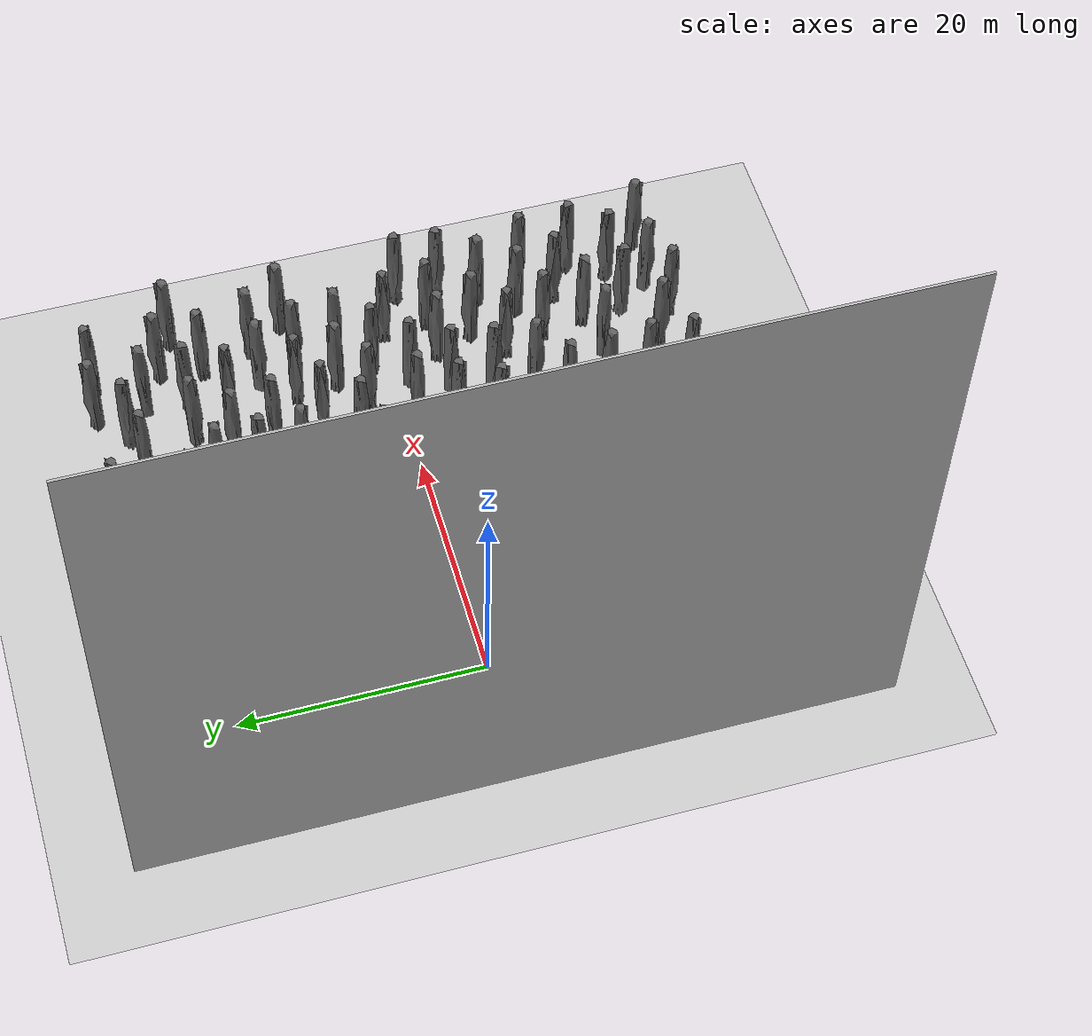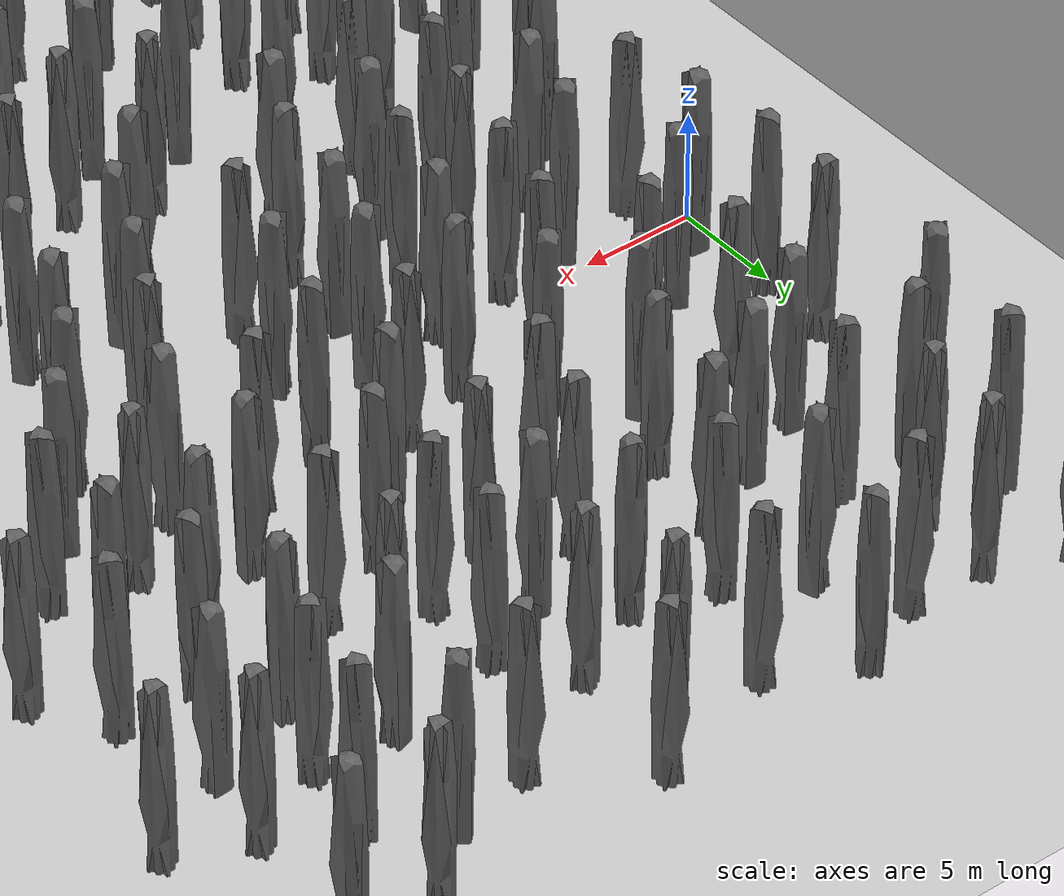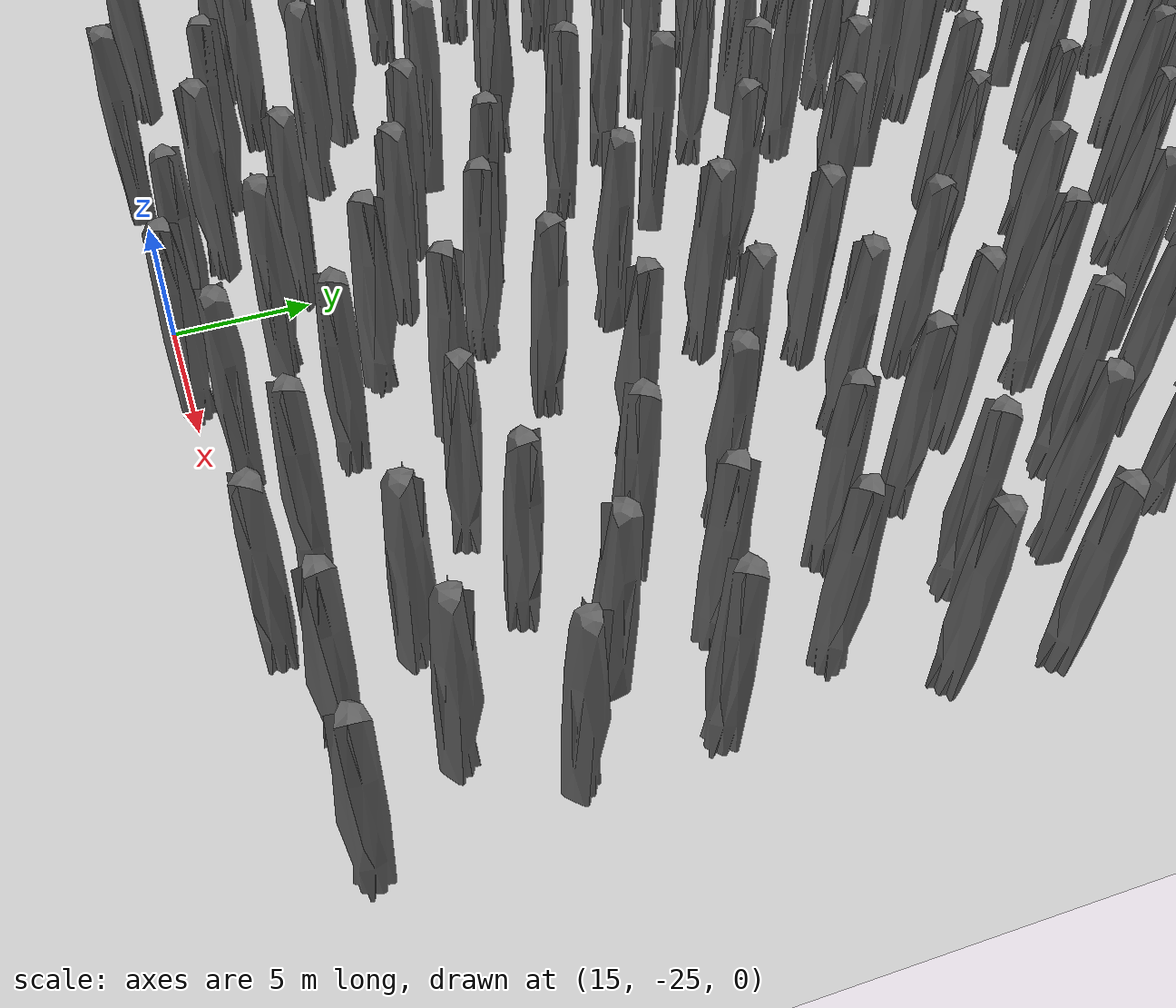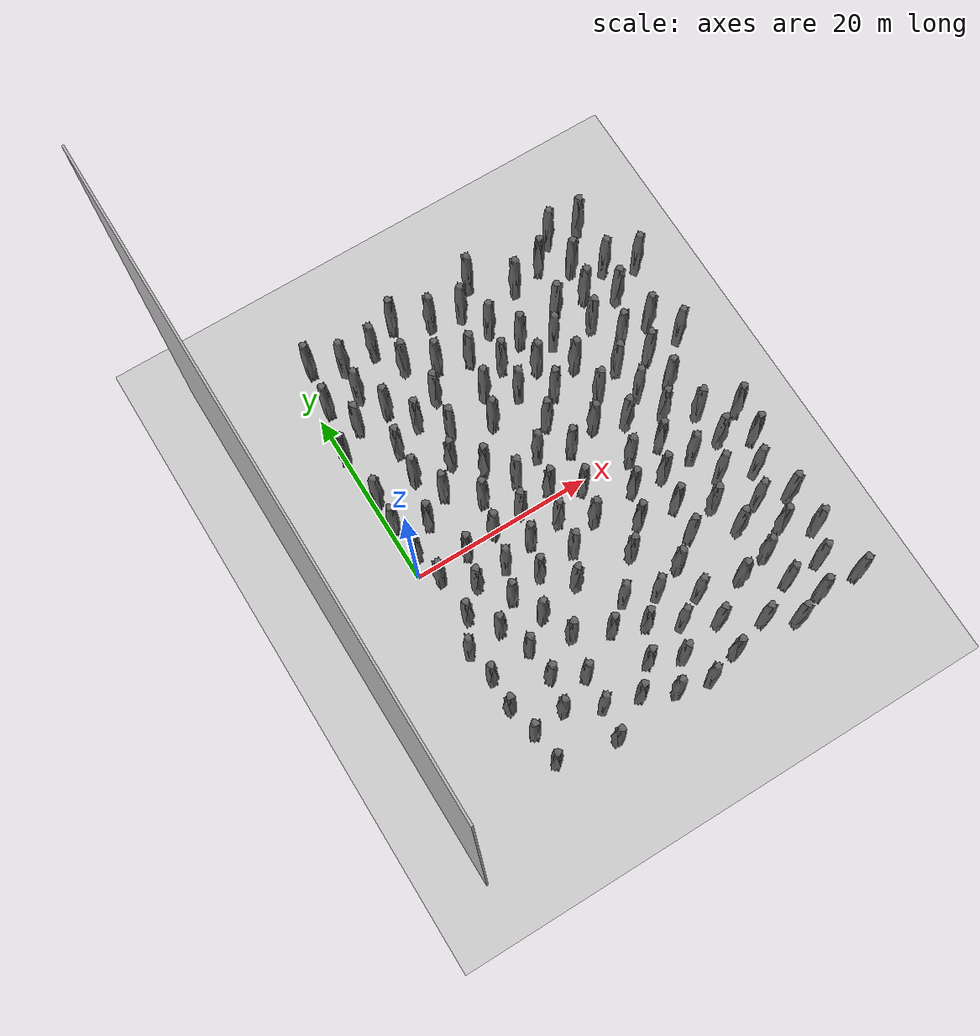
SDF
<sdf version="1.4">
 <world name="default">
  <model name="ground_plane">
   <static>1</static>
   <link name="link">
    <collision name="collision">
     <geometry><plane><normal>0 0 1</normal><size>1000 1000</size></plane></geometry>
     <surface>
      <contact><collide_bitmask>65535</collide_bitmask></contact>
      <friction><ode><mu>100</mu><mu2>50</mu2></ode></friction>
     </surface>
    </collision>
    <visual name="visual">
     <cast_shadows>0</cast_shadows>
     <geometry><plane><normal>0 0 1</normal><size>1000 1000</size></plane></geometry>
    </visual>
   </link>
  </model>
  <model name="wall_back">
   <static>1</static>
   <link name="link">
    <pose>0 0 25.0 0 0 0</pose>
    <collision name="collision"><geometry><box><size>60.0 0.2 50.0</size></box></geometry></collision>
    <visual name="visual">
     <cast_shadows>0</cast_shadows>
     <geometry><box><size>60.0 0.2 50.0</size></box></geometry>
    </visual>
   </link>
   <pose>-10.0 0.0 0 0 0 1.57</pose>
  </model>
  <include><uri>model://sun</uri></include>
  <include>
   <name>columnSimple Stone0</name>
   <uri>model://Simple Stone</uri>
   <pose>1.6884934902191162 -23.751445412635803 0 0 0 2.41665712995</pose>
   <static>true</static>
  </include>
  <include>
   <name>columnSimple Stone1</name>
   <uri>model://Simple Stone</uri>
   <pose>1.4365551471710205 -20.257015705108643 0 0 0 4.12752134368</pose>
   <static>true</static>
  </include>
  <include>
   <name>columnSimple Stone2</name>
   <uri>model://Simple Stone</uri>
   <pose>0.6622982621192932 -16.840140342712402 0 0 0 1.93993773979</pose>
   <static>true</static>
  </include>
  <include>
   <name>columnSimple Stone3</name>
   <uri>model://Simple Stone</uri>
   <pose>0.7502642273902893 -13.33774471282959 0 0 0 3.05251568737</pose>
   <static>true</static>
  </include>
  <include>
   <name>columnSimple Stone4</name>
   <uri>model://Simple Stone</uri>
   <pose>0.2858399748802185 -9.86516284942627 0 0 0 5.6347463072</pose>
   <static>true</static>
  </include>
  <include>
   <name>columnSimple Stone5</name>
   <uri>model://Simple Stone</uri>
   <pose>1.9259393215179443 -6.769264221191406 0 0 0 3.105220774</pose>
   <static>true</static>
  </include>
  <include>
   <name>columnSimple Stone6</name>
   <uri>model://Simple Stone</uri>
   <pose>1.6664785146713257 -1.8000831604003906 0 0 0 0.10707423221</pose>
   <static>true</static>
  </include>
  <include>
   <name>columnSimple Stone7</name>
   <uri>model://Simple Stone</uri>
   <pose>0.969555675983429 1.6333999633789062 0 0 0 3.06491373892</pose>
   <static>true</static>
  </include>
  <include>
   <name>columnSimple Stone8</name>
   <uri>model://Simple Stone</uri>
   <pose>0.5200985670089722 5.366312026977539 0 0 0 4.11616035559</pose>
   <static>true</static>
  </include>
  <include>
   <name>columnSimple Stone9</name>
   <uri>model://Simple Stone</uri>
   <pose>0.6056391000747681 8.868766784667969 0 0 0 5.29115478619</pose>
   <static>true</static>
  </include>
  <include>
   <name>columnSimple Stone10</name>
   <uri>model://Simple Stone</uri>
   <pose>0.008355568163096905 14.554241180419922 0 0 0 2.5488003421</pose>
   <static>true</static>
  </include>
  <include>
   <name>columnSimple Stone11</name>
   <uri>model://Simple Stone</uri>
   <pose>1.163988709449768 20.011371612548828 0 0 0 4.64915950347</pose>
   <static>true</static>
  </include>
  <include>
   <name>columnSimple Stone12</name>
   <uri>model://Simple Stone</uri>
   <pose>1.7938451766967773 24.90756607055664 0 0 0 4.61289699579</pose>
   <static>true</static>
  </include>
  <include>
   <name>columnSimple Stone13</name>
   <uri>model://Simple Stone</uri>
   <pose>4.034418106079102 -9.571541786193848 0 0 0 4.66829151392</pose>
   <static>true</static>
  </include>
  <include>
   <name>columnSimple Stone14</name>
   <uri>model://Simple Stone</uri>
   <pose>4.482866287231445 -4.374137878417969 0 0 0 3.28526416937</pose>
   <static>true</static>
  </include>
  <include>
   <name>columnSimple Stone15</name>
   <uri>model://Simple Stone</uri>
   <pose>3.6800363063812256 3.8532657623291016 0 0 0 2.57483780137</pose>
   <static>true</static>
  </include>
  <include>
   <name>columnSimple Stone16</name>
   <uri>model://Simple Stone</uri>
   <pose>4.945078372955322 8.797042846679688 0 0 0 4.97716958729</pose>
   <static>true</static>
  </include>
  <include>
   <name>columnSimple Stone17</name>
   <uri>model://Simple Stone</uri>
   <pose>2.7881789207458496 16.686634063720703 0 0 0 1.08276522994</pose>
   <static>true</static>
  </include>
  <include>
   <name>columnSimple Stone18</name>
   <uri>model://Simple Stone</uri>
   <pose>4.663895130157471 19.852733612060547 0 0 0 5.54773398065</pose>
   <static>true</static>
  </include>
  <include>
   <name>columnSimple Stone19</name>
   <uri>model://Simple Stone</uri>
   <pose>4.930139541625977 23.34610366821289 0 0 0 5.45800589878</pose>
   <static>true</static>
  </include>
  <include>
   <name>columnSimple Stone20</name>
   <uri>model://Simple Stone</uri>
   <pose>5.008763313293457 -19.72410774230957 0 0 0 6.19390986142</pose>
   <static>true</static>
  </include>
  <include>
   <name>columnSimple Stone21</name>
   <uri>model://Simple Stone</uri>
   <pose>5.707606315612793 -16.291014671325684 0 0 0 0.522976072296</pose>
   <static>true</static>
  </include>
  <include>
   <name>columnSimple Stone22</name>
   <uri>model://Simple Stone</uri>
   <pose>5.390676498413086 -12.801878929138184 0 0 0 0.823004290934</pose>
   <static>true</static>
  </include>
  <include>
   <name>columnSimple Stone23</name>
   <uri>model://Simple Stone</uri>
   <pose>6.801545143127441 -7.422700881958008 0 0 0 4.29350102436</pose>
   <static>true</static>
  </include>
  <include>
   <name>columnSimple Stone24</name>
   <uri>model://Simple Stone</uri>
   <pose>5.360180377960205 -0.9822597503662109 0 0 0 2.44923754736</pose>
   <static>true</static>
  </include>
  <include>
   <name>columnSimple Stone25</name>
   <uri>model://Simple Stone</uri>
   <pose>6.638490676879883 5.72998046875 0 0 0 4.11862256846</pose>
   <static>true</static>
  </include>
  <include>
   <name>columnSimple Stone26</name>
   <uri>model://Simple Stone</uri>
   <pose>5.084854602813721 12.314373016357422 0 0 0 3.01040538614</pose>
   <static>true</static>
  </include>
  <include>
   <name>columnSimple Stone27</name>
   <uri>model://Simple Stone</uri>
   <pose>6.291105270385742 16.750041961669922 0 0 0 4.74182607581</pose>
   <static>true</static>
  </include>
  <include>
   <name>columnSimple Stone28</name>
   <uri>model://Simple Stone</uri>
   <pose>8.00903034210205 -24.970256896689534 0 0 0 1.60037254492</pose>
   <static>true</static>
  </include>
  <include>
   <name>columnSimple Stone29</name>
   <uri>model://Simple Stone</uri>
   <pose>8.575140953063965 -21.512796640396118 0 0 0 5.4969116018</pose>
   <static>true</static>
  </include>
  <include>
   <name>columnSimple Stone30</name>
   <uri>model://Simple Stone</uri>
   <pose>8.758108139038086 -18.01407766342163 0 0 0 0.699094874078</pose>
   <static>true</static>
  </include>
  <include>
   <name>columnSimple Stone31</name>
   <uri>model://Simple Stone</uri>
   <pose>9.731289863586426 -13.781815528869629 0 0 0 1.5035750667</pose>
   <static>true</static>
  </include>
  <include>
   <name>columnSimple Stone32</name>
   <uri>model://Simple Stone</uri>
   <pose>8.391861915588379 -10.544464111328125 0 0 0 4.84654453618</pose>
   <static>true</static>
  </include>
  <include>
   <name>columnSimple Stone33</name>
   <uri>model://Simple Stone</uri>
   <pose>8.005762100219727 -4.132659912109375 0 0 0 5.75639616806</pose>
   <static>true</static>
  </include>
  <include>
   <name>columnSimple Stone34</name>
   <uri>model://Simple Stone</uri>
   <pose>8.81647777557373 -0.4090919494628906 0 0 0 0.523650981618</pose>
   <static>true</static>
  </include>
  <include>
   <name>columnSimple Stone35</name>
   <uri>model://Simple Stone</uri>
   <pose>9.693172454833984 3.0339126586914062 0 0 0 4.53069181389</pose>
   <static>true</static>
  </include>
  <include>
   <name>columnSimple Stone36</name>
   <uri>model://Simple Stone</uri>
   <pose>9.006694793701172 8.31186294555664 0 0 0 2.12421972612</pose>
   <static>true</static>
  </include>
  <include>
   <name>columnSimple Stone37</name>
   <uri>model://Simple Stone</uri>
   <pose>8.239546775817871 13.838325500488281 0 0 0 3.05083233256</pose>
   <static>true</static>
  </include>
  <include>
   <name>columnSimple Stone38</name>
   <uri>model://Simple Stone</uri>
   <pose>8.433523178100586 23.317527770996094 0 0 0 6.24711309557</pose>
   <static>true</static>
  </include>
  <include>
   <name>columnSimple Stone39</name>
   <uri>model://Simple Stone</uri>
   <pose>12.228715896606445 -22.554818391799927 0 0 0 2.42088195391</pose>
   <static>true</static>
  </include>
  <include>
   <name>columnSimple Stone40</name>
   <uri>model://Simple Stone</uri>
   <pose>10.414350509643555 -6.7550048828125 0 0 0 2.84022449196</pose>
   <static>true</static>
  </include>
  <include>
   <name>columnSimple Stone41</name>
   <uri>model://Simple Stone</uri>
   <pose>11.432368278503418 -3.402669906616211 0 0 0 4.38820142395</pose>
   <static>true</static>
  </include>
  <include>
   <name>columnSimple Stone42</name>
   <uri>model://Simple Stone</uri>
   <pose>12.296886444091797 -0.0075092315673828125 0 0 0 3.45549216785</pose>
   <static>true</static>
  </include>
  <include>
   <name>columnSimple Stone43</name>
   <uri>model://Simple Stone</uri>
   <pose>11.609607696533203 5.966793060302734 0 0 0 2.38811419032</pose>
   <static>true</static>
  </include>
  <include>
   <name>columnSimple Stone44</name>
   <uri>model://Simple Stone</uri>
   <pose>10.722411155700684 11.366504669189453 0 0 0 1.13162484218</pose>
   <static>true</static>
  </include>
  <include>
   <name>columnSimple Stone45</name>
   <uri>model://Simple Stone</uri>
   <pose>11.385347366333008 15.380546569824219 0 0 0 3.37126448561</pose>
   <static>true</static>
  </include>
  <include>
   <name>columnSimple Stone46</name>
   <uri>model://Simple Stone</uri>
   <pose>10.268668174743652 20.051822662353516 0 0 0 1.88374882891</pose>
   <static>true</static>
  </include>
  <include>
   <name>columnSimple Stone47</name>
   <uri>model://Simple Stone</uri>
   <pose>11.633270263671875 24.744457244873047 0 0 0 4.12680883016</pose>
   <static>true</static>
  </include>
  <include>
   <name>columnSimple Stone48</name>
   <uri>model://Simple Stone</uri>
   <pose>14.72936725616455 -20.100993633270264 0 0 0 2.45873787409</pose>
   <static>true</static>
  </include>
  <include>
   <name>columnSimple Stone49</name>
   <uri>model://Simple Stone</uri>
   <pose>13.399279594421387 -15.518721580505371 0 0 0 2.53511186983</pose>
   <static>true</static>
  </include>
  <include>
   <name>columnSimple Stone50</name>
   <uri>model://Simple Stone</uri>
   <pose>13.061667442321777 -9.458044052124023 0 0 0 3.15896409902</pose>
   <static>true</static>
  </include>
  <include>
   <name>columnSimple Stone51</name>
   <uri>model://Simple Stone</uri>
   <pose>14.671353340148926 -6.346223831176758 0 0 0 1.18785002042</pose>
   <static>true</static>
  </include>
  <include>
   <name>columnSimple Stone52</name>
   <uri>model://Simple Stone</uri>
   <pose>13.739618301391602 3.1851444244384766 0 0 0 1.24780444742</pose>
   <static>true</static>
  </include>
  <include>
   <name>columnSimple Stone53</name>
   <uri>model://Simple Stone</uri>
   <pose>13.308094024658203 18.309295654296875 0 0 0 4.52338300344</pose>
   <static>true</static>
  </include>
  <include>
   <name>columnSimple Stone54</name>
   <uri>model://Simple Stone</uri>
   <pose>15.575995445251465 -24.028833985328674 0 0 0 5.88899408217</pose>
   <static>true</static>
  </include>
  <include>
   <name>columnSimple Stone55</name>
   <uri>model://Simple Stone</uri>
   <pose>16.705867767333984 -16.80425453186035 0 0 0 2.5810908439</pose>
   <static>true</static>
  </include>
  <include>
   <name>columnSimple Stone56</name>
   <uri>model://Simple Stone</uri>
   <pose>16.147207260131836 -13.345381736755371 0 0 0 5.62190050566</pose>
   <static>true</static>
  </include>
  <include>
   <name>columnSimple Stone57</name>
   <uri>model://Simple Stone</uri>
   <pose>15.03872013092041 -2.8620376586914062 0 0 0 2.92478399153</pose>
   <static>true</static>
  </include>
  <include>
   <name>columnSimple Stone58</name>
   <uri>model://Simple Stone</uri>
   <pose>15.998802185058594 0.5073471069335938 0 0 0 2.06915514702</pose>
   <static>true</static>
  </include>
  <include>
   <name>columnSimple Stone59</name>
   <uri>model://Simple Stone</uri>
   <pose>17.027135848999023 4.396234512329102 0 0 0 5.98019733817</pose>
   <static>true</static>
  </include>
  <include>
   <name>columnSimple Stone60</name>
   <uri>model://Simple Stone</uri>
   <pose>15.009492874145508 9.79010009765625 0 0 0 4.89230695377</pose>
   <static>true</static>
  </include>
  <include>
   <name>columnSimple Stone61</name>
   <uri>model://Simple Stone</uri>
   <pose>15.999228477478027 13.150894165039062 0 0 0 5.07792436986</pose>
   <static>true</static>
  </include>
  <include>
   <name>columnSimple Stone62</name>
   <uri>model://Simple Stone</uri>
   <pose>16.63960075378418 17.225059509277344 0 0 0 0.781016022348</pose>
   <static>true</static>
  </include>
  <include>
   <name>columnSimple Stone63</name>
   <uri>model://Simple Stone</uri>
   <pose>15.253796577453613 22.988807678222656 0 0 0 0.0203440706014</pose>
   <static>true</static>
  </include>
  <include>
   <name>columnSimple Stone64</name>
   <uri>model://Simple Stone</uri>
   <pose>19.1137752532959 -24.767676055431366 0 0 0 5.43866444582</pose>
   <static>true</static>
  </include>
  <include>
   <name>columnSimple Stone65</name>
   <uri>model://Simple Stone</uri>
   <pose>17.958492279052734 -21.46013379096985 0 0 0 0.975396093779</pose>
   <static>true</static>
  </include>
  <include>
   <name>columnSimple Stone66</name>
   <uri>model://Simple Stone</uri>
   <pose>19.421783447265625 -14.591041564941406 0 0 0 5.44649080197</pose>
   <static>true</static>
  </include>
  <include>
   <name>columnSimple Stone67</name>
   <uri>model://Simple Stone</uri>
   <pose>19.374704360961914 -9.791415214538574 0 0 0 1.67466791516</pose>
   <static>true</static>
  </include>
  <include>
   <name>columnSimple Stone68</name>
   <uri>model://Simple Stone</uri>
   <pose>18.249181747436523 -4.646047592163086 0 0 0 6.20533550461</pose>
   <static>true</static>
  </include>
  <include>
   <name>columnSimple Stone69</name>
   <uri>model://Simple Stone</uri>
   <pose>19.039554595947266 -1.2328643798828125 0 0 0 2.22687396869</pose>
   <static>true</static>
  </include>
  <include>
   <name>columnSimple Stone70</name>
   <uri>model://Simple Stone</uri>
   <pose>19.679927825927734 6.756000518798828 0 0 0 3.81555930974</pose>
   <static>true</static>
  </include>
  <include>
   <name>columnSimple Stone71</name>
   <uri>model://Simple Stone</uri>
   <pose>18.964027404785156 11.248046875 0 0 0 5.92612266937</pose>
   <static>true</static>
  </include>
  <include>
   <name>columnSimple Stone72</name>
   <uri>model://Simple Stone</uri>
   <pose>19.117427825927734 14.748188018798828 0 0 0 2.9122875343</pose>
   <static>true</static>
  </include>
  <include>
   <name>columnSimple Stone73</name>
   <uri>model://Simple Stone</uri>
   <pose>18.66501235961914 22.189983367919922 0 0 0 5.35279125327</pose>
   <static>true</static>
  </include>
  <include>
   <name>columnSimple Stone74</name>
   <uri>model://Simple Stone</uri>
   <pose>19.828716278076172 -18.497570991516113 0 0 0 5.21493034249</pose>
   <static>true</static>
  </include>
  <include>
   <name>columnSimple Stone75</name>
   <uri>model://Simple Stone</uri>
   <pose>21.887075424194336 -7.349590301513672 0 0 0 2.08059958909</pose>
   <static>true</static>
  </include>
  <include>
   <name>columnSimple Stone76</name>
   <uri>model://Simple Stone</uri>
   <pose>20.304285049438477 2.902345657348633 0 0 0 4.16755681706</pose>
   <static>true</static>
  </include>
  <include>
   <name>columnSimple Stone77</name>
   <uri>model://Simple Stone</uri>
   <pose>22.18549919128418 9.204803466796875 0 0 0 4.05710088997</pose>
   <static>true</static>
  </include>
  <include>
   <name>columnSimple Stone78</name>
   <uri>model://Simple Stone</uri>
   <pose>22.153165817260742 12.708152770996094 0 0 0 0.245738848461</pose>
   <static>true</static>
  </include>
  <include>
   <name>columnSimple Stone79</name>
   <uri>model://Simple Stone</uri>
   <pose>20.217803955078125 19.049388885498047 0 0 0 5.29753068172</pose>
   <static>true</static>
  </include>
  <include>
   <name>columnSimple Stone80</name>
   <uri>model://Simple Stone</uri>
   <pose>20.995426177978516 24.806026458740234 0 0 0 6.14784009118</pose>
   <static>true</static>
  </include>
  <include>
   <name>columnSimple Stone81</name>
   <uri>model://Simple Stone</uri>
   <pose>22.573392868041992 -23.800041556358337 0 0 0 1.67570295603</pose>
   <static>true</static>
  </include>
  <include>
   <name>columnSimple Stone82</name>
   <uri>model://Simple Stone</uri>
   <pose>23.03688621520996 -20.327335834503174 0 0 0 3.29812762458</pose>
   <static>true</static>
  </include>
  <include>
   <name>columnSimple Stone83</name>
   <uri>model://Simple Stone</uri>
   <pose>22.907852172851562 -16.826212882995605 0 0 0 5.08654075096</pose>
   <static>true</static>
  </include>
  <include>
   <name>columnSimple Stone84</name>
   <uri>model://Simple Stone</uri>
   <pose>22.690263748168945 -13.329476356506348 0 0 0 6.10689286085</pose>
   <static>true</static>
  </include>
  <include>
   <name>columnSimple Stone85</name>
   <uri>model://Simple Stone</uri>
   <pose>23.2685546875 -4.1299591064453125 0 0 0 2.04256558116</pose>
   <static>true</static>
  </include>
  <include>
   <name>columnSimple Stone86</name>
   <uri>model://Simple Stone</uri>
   <pose>23.635910034179688 3.9862194061279297 0 0 0 0.0417196206618</pose>
   <static>true</static>
  </include>
  <include>
   <name>columnSimple Stone87</name>
   <uri>model://Simple Stone</uri>
   <pose>22.293529510498047 16.22699737548828 0 0 0 4.59999869614</pose>
   <static>true</static>
  </include>
  <include>
   <name>columnSimple Stone88</name>
   <uri>model://Simple Stone</uri>
   <pose>26.90976905822754 -22.56728196144104 0 0 0 3.39481634358</pose>
   <static>true</static>
  </include>
  <include>
   <name>columnSimple Stone89</name>
   <uri>model://Simple Stone</uri>
   <pose>25.559326171875 -11.318757057189941 0 0 0 3.70747882279</pose>
   <static>true</static>
  </include>
  <include>
   <name>columnSimple Stone90</name>
   <uri>model://Simple Stone</uri>
   <pose>26.045072555541992 -7.849092483520508 0 0 0 2.16895259716</pose>
   <static>true</static>
  </include>
  <include>
   <name>columnSimple Stone91</name>
   <uri>model://Simple Stone</uri>
   <pose>26.772451400756836 -4.421932220458984 0 0 0 1.88057177191</pose>
   <static>true</static>
  </include>
  <include>
   <name>columnSimple Stone92</name>
   <uri>model://Simple Stone</uri>
   <pose>24.89984703063965 -1.0294113159179688 0 0 0 6.01437302925</pose>
   <static>true</static>
  </include>
  <include>
   <name>columnSimple Stone93</name>
   <uri>model://Simple Stone</uri>
   <pose>26.85324478149414 2.599397659301758 0 0 0 3.29641073576</pose>
   <static>true</static>
  </include>
  <include>
   <name>columnSimple Stone94</name>
   <uri>model://Simple Stone</uri>
   <pose>26.012752532958984 6.720544815063477 0 0 0 1.42936977916</pose>
   <static>true</static>
  </include>
  <include>
   <name>columnSimple Stone95</name>
   <uri>model://Simple Stone</uri>
   <pose>25.6738338470459 10.86910629272461 0 0 0 0.0814556632956</pose>
   <static>true</static>
  </include>
  <include>
   <name>columnSimple Stone96</name>
   <uri>model://Simple Stone</uri>
   <pose>25.249805450439453 14.346851348876953 0 0 0 5.7040448555</pose>
   <static>true</static>
  </include>
  <include>
   <name>columnSimple Stone97</name>
   <uri>model://Simple Stone</uri>
   <pose>25.049348831176758 21.778270721435547 0 0 0 6.16295362351</pose>
   <static>true</static>
  </include>
  <include>
   <name>columnSimple Stone98</name>
   <uri>model://Simple Stone</uri>
   <pose>27.449081420898438 -17.726828575134277 0 0 0 4.38775271149</pose>
   <static>true</static>
  </include>
  <include>
   <name>columnSimple Stone99</name>
   <uri>model://Simple Stone</uri>
   <pose>29.274639129638672 -9.813483238220215 0 0 0 1.4358198409</pose>
   <static>true</static>
  </include>
  <include>
   <name>columnSimple Stone100</name>
   <uri>model://Simple Stone</uri>
   <pose>28.39168357849121 -1.3150691986083984 0 0 0 2.26104770676</pose>
   <static>true</static>
  </include>
  <include>
   <name>columnSimple Stone101</name>
   <uri>model://Simple Stone</uri>
   <pose>29.641193389892578 4.721153259277344 0 0 0 5.4628908849</pose>
   <static>true</static>
  </include>
  <include>
   <name>columnSimple Stone102</name>
   <uri>model://Simple Stone</uri>
   <pose>29.19062042236328 8.195560455322266 0 0 0 1.23650298468</pose>
   <static>true</static>
  </include>
  <include>
   <name>columnSimple Stone103</name>
   <uri>model://Simple Stone</uri>
   <pose>29.65348243713379 13.78323745727539 0 0 0 1.41773366159</pose>
   <static>true</static>
  </include>
  <include>
   <name>columnSimple Stone104</name>
   <uri>model://Simple Stone</uri>
   <pose>27.328933715820312 17.166736602783203 0 0 0 3.49585561532</pose>
   <static>true</static>
  </include>
  <include>
   <name>columnSimple Stone105</name>
   <uri>model://Simple Stone</uri>
   <pose>28.485578536987305 22.461524963378906 0 0 0 2.40444492325</pose>
   <static>true</static>
  </include>
  <include>
   <name>columnSimple Stone106</name>
   <uri>model://Simple Stone</uri>
   <pose>29.925745010375977 -24.35008955001831 0 0 0 3.10152844043</pose>
   <static>true</static>
  </include>
  <include>
   <name>columnSimple Stone107</name>
   <uri>model://Simple Stone</uri>
   <pose>31.156639099121094 -20.442739486694336 0 0 0 0.448865320271</pose>
   <static>true</static>
  </include>
  <include>
   <name>columnSimple Stone108</name>
   <uri>model://Simple Stone</uri>
   <pose>30.865678787231445 -16.951342582702637 0 0 0 5.8672148204</pose>
   <static>true</static>
  </include>
  <include>
   <name>columnSimple Stone109</name>
   <uri>model://Simple Stone</uri>
   <pose>30.2380428314209 -13.244346618652344 0 0 0 3.12263666248</pose>
   <static>true</static>
  </include>
  <include>
   <name>columnSimple Stone110</name>
   <uri>model://Simple Stone</uri>
   <pose>31.789575576782227 -7.374301910400391 0 0 0 5.32599586663</pose>
   <static>true</static>
  </include>
  <include>
   <name>columnSimple Stone111</name>
   <uri>model://Simple Stone</uri>
   <pose>30.489870071411133 -4.120800018310547 0 0 0 5.74428160304</pose>
   <static>true</static>
  </include>
  <include>
   <name>columnSimple Stone112</name>
   <uri>model://Simple Stone</uri>
   <pose>30.647747039794922 1.3653583526611328 0 0 0 2.7446810676</pose>
   <static>true</static>
  </include>
  <include>
   <name>columnSimple Stone113</name>
   <uri>model://Simple Stone</uri>
   <pose>31.51616859436035 10.815929412841797 0 0 0 4.10897053058</pose>
   <static>true</static>
  </include>
  <include>
   <name>columnSimple Stone114</name>
   <uri>model://Simple Stone</uri>
   <pose>30.8314266204834 17.082775115966797 0 0 0 0.435188547299</pose>
   <static>true</static>
  </include>
  <include>
   <name>columnSimple Stone115</name>
   <uri>model://Simple Stone</uri>
   <pose>31.413536071777344 20.537578582763672 0 0 0 4.73083541611</pose>
   <static>true</static>
  </include>
  <include>
   <name>columnSimple Stone116</name>
   <uri>model://Simple Stone</uri>
   <pose>31.103649139404297 24.78966522216797 0 0 0 5.38432267548</pose>
   <static>true</static>
  </include>
  <include>
   <name>columnSimple Stone117</name>
   <uri>model://Simple Stone</uri>
   <pose>33.25692367553711 -23.264838933944702 0 0 0 3.81286291467</pose>
   <static>true</static>
  </include>
  <include>
   <name>columnSimple Stone118</name>
   <uri>model://Simple Stone</uri>
   <pose>33.93968200683594 -15.270567893981934 0 0 0 1.7423907127</pose>
   <static>true</static>
  </include>
  <include>
   <name>columnSimple Stone119</name>
   <uri>model://Simple Stone</uri>
   <pose>33.43180847167969 -11.80407428741455 0 0 0 5.09405011131</pose>
   <static>true</static>
  </include>
  <include>
   <name>columnSimple Stone120</name>
   <uri>model://Simple Stone</uri>
   <pose>33.99336624145508 -4.125532150268555 0 0 0 2.9988090979</pose>
   <static>true</static>
  </include>
  <include>
   <name>columnSimple Stone121</name>
   <uri>model://Simple Stone</uri>
   <pose>33.681522369384766 -0.38698768615722656 0 0 0 1.43811514341</pose>
   <static>true</static>
  </include>
  <include>
   <name>columnSimple Stone122</name>
   <uri>model://Simple Stone</uri>
   <pose>33.05530548095703 3.9347991943359375 0 0 0 4.56252863384</pose>
   <static>true</static>
  </include>
  <include>
   <name>columnSimple Stone123</name>
   <uri>model://Simple Stone</uri>
   <pose>32.74839782714844 7.536277770996094 0 0 0 3.71581293361</pose>
   <static>true</static>
  </include>
  <include>
   <name>columnSimple Stone124</name>
   <uri>model://Simple Stone</uri>
   <pose>33.783138275146484 15.195472717285156 0 0 0 3.24156795488</pose>
   <static>true</static>
  </include>
  <include>
   <name>columnSimple Stone125</name>
   <uri>model://Simple Stone</uri>
   <pose>34.46226501464844 18.811378479003906 0 0 0 5.28148441814</pose>
   <static>true</static>
  </include>
  <include>
   <name>columnSimple Stone126</name>
   <uri>model://Simple Stone</uri>
   <pose>34.572425842285156 24.29763412475586 0 0 0 3.04425234324</pose>
   <static>true</static>
  </include>
  <include>
   <name>columnSimple Stone127</name>
   <uri>model://Simple Stone</uri>
   <pose>35.09507751464844 -20.282272815704346 0 0 0 0.603665342739</pose>
   <static>true</static>
  </include>
  <include>
   <name>columnSimple Stone128</name>
   <uri>model://Simple Stone</uri>
   <pose>36.8359489440918 -17.241899490356445 0 0 0 0.7684499274</pose>
   <static>true</static>
  </include>
  <include>
   <name>columnSimple Stone129</name>
   <uri>model://Simple Stone</uri>
   <pose>36.735816955566406 -12.969420433044434 0 0 0 3.11747799155</pose>
   <static>true</static>
  </include>
  <include>
   <name>columnSimple Stone130</name>
   <uri>model://Simple Stone</uri>
   <pose>35.33559036254883 -8.862966537475586 0 0 0 5.08267263912</pose>
   <static>true</static>
  </include>
  <include>
   <name>columnSimple Stone131</name>
   <uri>model://Simple Stone</uri>
   <pose>37.06272888183594 -5.814769744873047 0 0 0 2.20143375973</pose>
   <static>true</static>
  </include>
  <include>
   <name>columnSimple Stone132</name>
   <uri>model://Simple Stone</uri>
   <pose>36.89134979248047 7.9680938720703125 0 0 0 5.21429079079</pose>
   <static>true</static>
  </include>
  <include>
   <name>columnSimple Stone133</name>
   <uri>model://Simple Stone</uri>
   <pose>35.01785659790039 10.9285888671875 0 0 0 4.77064376462</pose>
   <static>true</static>
  </include>
  <include>
   <name>columnSimple Stone134</name>
   <uri>model://Simple Stone</uri>
   <pose>37.69131088256836 -23.519338130950928 0 0 0 3.60291734699</pose>
   <static>true</static>
  </include>
  <include>
   <name>columnSimple Stone137</name>
   <uri>model://Simple Stone</uri>
   <pose>37.37003707885742 -2.3247737884521484 0 0 0 2.42870878229</pose>
   <static>true</static>
  </include>
  <include>
   <name>columnSimple Stone141</name>
   <uri>model://Simple Stone</uri>
   <pose>37.64593505859375 17.340042114257812 0 0 0 5.30667681945</pose>
   <static>true</static>
  </include>
 </world>
</sdf>
